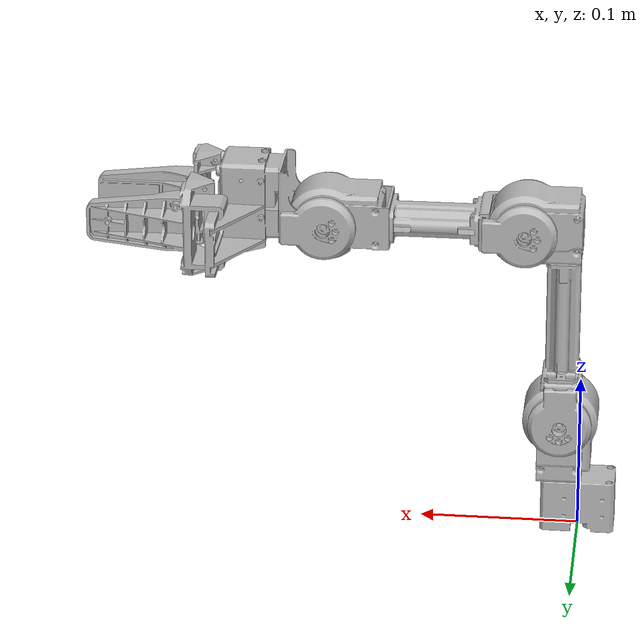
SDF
<?xml version='1.0'?>
<sdf version='1.7'>
  <model name='Openmanipulator'>
    <link name='link1'>
      <pose>0 0 0 0 -0 0</pose>
      <inertial>
        <pose>0.000309 0 -0.000122 0 -0 0</pose>
        <mass>0.07912</mass>
        <inertia>
          <ixx>1.25052e-05</ixx>
          <ixy>0</ixy>
          <ixz>-1.78552e-07</ixz>
          <iyy>2.18984e-05</iyy>
          <iyz>0</iyz>
          <izz>1.92674e-05</izz>
        </inertia>
      </inertial>
      <self_collide>0</self_collide>
      <enable_wind>0</enable_wind>
      <kinematic>0</kinematic>
      <visual name='link1_visual'>
        <pose>0 0 0 0 -0 0</pose>
        <geometry>
          <mesh>
            <scale>0.001 0.001 0.001</scale>
            <uri>/home/roo/catkin_ws/src/open_manipulator/open_manipulator_description/meshes/chain_link1.stl</uri>
          </mesh>
        </geometry>
        <material>
          <shader type='pixel'/>
          <emissive>0 0 0 1</emissive>
        </material>
        <transparency>0</transparency>
        <cast_shadows>1</cast_shadows>
      </visual>
      <collision name='link1_collision'>
        <laser_retro>0</laser_retro>
        <max_contacts>10</max_contacts>
        <pose>0 0 0 0 -0 0</pose>
        <geometry>
          <mesh>
            <uri>/home/roo/catkin_ws/src/open_manipulator/open_manipulator_description/meshes/chain_link1.stl</uri>
            <scale>0.001 0.001 0.001</scale>
          </mesh>
        </geometry>
        <surface>
          <friction>
            <ode>
              <mu>1</mu>
              <mu2>1</mu2>
              <fdir1>0 0 0</fdir1>
              <slip1>0</slip1>
              <slip2>0</slip2>
            </ode>
            <torsional>
              <coefficient>1</coefficient>
              <patch_radius>0</patch_radius>
              <surface_radius>0</surface_radius>
              <use_patch_radius>1</use_patch_radius>
              <ode>
                <slip>0</slip>
              </ode>
            </torsional>
          </friction>
          <bounce>
            <restitution_coefficient>0</restitution_coefficient>
            <threshold>1e+06</threshold>
          </bounce>
          <contact>
            <collide_without_contact>0</collide_without_contact>
            <collide_without_contact_bitmask>1</collide_without_contact_bitmask>
            <collide_bitmask>1</collide_bitmask>
            <ode>
              <soft_cfm>0</soft_cfm>
              <soft_erp>0.2</soft_erp>
              <kp>1e+13</kp>
              <kd>1</kd>
              <max_vel>0.01</max_vel>
              <min_depth>0</min_depth>
            </ode>
            <bullet>
              <split_impulse>1</split_impulse>
              <split_impulse_penetration_threshold>-0.01</split_impulse_penetration_threshold>
              <soft_cfm>0</soft_cfm>
              <soft_erp>0.2</soft_erp>
              <kp>1e+13</kp>
              <kd>1</kd>
            </bullet>
          </contact>
        </surface>
      </collision>
    </link>
    <link name='gripper_link'>
      <pose>0.2417 0.021 0.2045 0 -0 0</pose>
      <inertial>
        <pose>0 0 0 0 -0 0</pose>
        <mass>0.001</mass>
        <inertia>
          <ixx>0.001</ixx>
          <ixy>0</ixy>
          <ixz>0</ixz>
          <iyy>0.001</iyy>
          <iyz>0</iyz>
          <izz>0.001</izz>
        </inertia>
      </inertial>
      <self_collide>0</self_collide>
      <enable_wind>0</enable_wind>
      <kinematic>0</kinematic>
      <visual name='gripper_link_visual'>
        <pose>0 0 0 0 -0 0</pose>
        <geometry>
          <mesh>
            <scale>0.001 0.001 0.001</scale>
            <uri>/home/roo/catkin_ws/src/open_manipulator/open_manipulator_description/meshes/chain_link_grip_l.stl</uri>
          </mesh>
        </geometry>
        <material>
          <shader type='pixel'/>
        </material>
        <transparency>0</transparency>
        <cast_shadows>1</cast_shadows>
      </visual>
      <collision name='gripper_link_collision'>
        <laser_retro>0</laser_retro>
        <max_contacts>10</max_contacts>
        <pose>0 0 0 0 -0 0</pose>
        <geometry>
          <mesh>
            <uri>/home/roo/catkin_ws/src/open_manipulator/open_manipulator_description/meshes/chain_link_grip_l.stl</uri>
            <scale>0.001 0.001 0.001</scale>
          </mesh>
        </geometry>
        <surface>
          <friction>
            <ode>
              <mu>1</mu>
              <mu2>1</mu2>
              <fdir1>0 0 0</fdir1>
              <slip1>0</slip1>
              <slip2>0</slip2>
            </ode>
            <torsional>
              <coefficient>1</coefficient>
              <patch_radius>0</patch_radius>
              <surface_radius>0</surface_radius>
              <use_patch_radius>1</use_patch_radius>
              <ode>
                <slip>0</slip>
              </ode>
            </torsional>
          </friction>
          <bounce>
            <restitution_coefficient>0</restitution_coefficient>
            <threshold>1e+06</threshold>
          </bounce>
          <contact>
            <collide_without_contact>0</collide_without_contact>
            <collide_without_contact_bitmask>1</collide_without_contact_bitmask>
            <collide_bitmask>1</collide_bitmask>
            <ode>
              <soft_cfm>0</soft_cfm>
              <soft_erp>0.2</soft_erp>
              <kp>1e+13</kp>
              <kd>1</kd>
              <max_vel>0.01</max_vel>
              <min_depth>0</min_depth>
            </ode>
            <bullet>
              <split_impulse>1</split_impulse>
              <split_impulse_penetration_threshold>-0.01</split_impulse_penetration_threshold>
              <soft_cfm>0</soft_cfm>
              <soft_erp>0.2</soft_erp>
              <kp>1e+13</kp>
              <kd>1</kd>
            </bullet>
          </contact>
        </surface>
      </collision>
    </link>
    <link name='gripper_link_sub'>
      <pose>0.2417 -0.021 0.2045 0 -0 0</pose>
      <inertial>
        <pose>0 0 0 0 -0 0</pose>
        <mass>0.001</mass>
        <inertia>
          <ixx>0.001</ixx>
          <ixy>0</ixy>
          <ixz>0</ixz>
          <iyy>0.001</iyy>
          <iyz>0</iyz>
          <izz>0.001</izz>
        </inertia>
      </inertial>
      <self_collide>0</self_collide>
      <enable_wind>0</enable_wind>
      <kinematic>0</kinematic>
      <visual name='gripper_link_sub_visual'>
        <pose>0 0 0 0 -0 0</pose>
        <geometry>
          <mesh>
            <scale>0.001 0.001 0.001</scale>
            <uri>/home/roo/catkin_ws/src/open_manipulator/open_manipulator_description/meshes/chain_link_grip_r.stl</uri>
          </mesh>
        </geometry>
        <material>
          <shader type='pixel'/>
        </material>
        <transparency>0</transparency>
        <cast_shadows>1</cast_shadows>
      </visual>
      <collision name='gripper_link_sub_collision'>
        <laser_retro>0</laser_retro>
        <max_contacts>10</max_contacts>
        <pose>0 0 0 0 -0 0</pose>
        <geometry>
          <mesh>
            <uri>/home/roo/catkin_ws/src/open_manipulator/open_manipulator_description/meshes/chain_link_grip_r.stl</uri>
            <scale>0.001 0.001 0.001</scale>
          </mesh>
        </geometry>
        <surface>
          <friction>
            <ode>
              <mu>1</mu>
              <mu2>1</mu2>
              <fdir1>0 0 0</fdir1>
              <slip1>0</slip1>
              <slip2>0</slip2>
            </ode>
            <torsional>
              <coefficient>1</coefficient>
              <patch_radius>0</patch_radius>
              <surface_radius>0</surface_radius>
              <use_patch_radius>1</use_patch_radius>
              <ode>
                <slip>0</slip>
              </ode>
            </torsional>
          </friction>
          <bounce>
            <restitution_coefficient>0</restitution_coefficient>
            <threshold>1e+06</threshold>
          </bounce>
          <contact>
            <collide_without_contact>0</collide_without_contact>
            <collide_without_contact_bitmask>1</collide_without_contact_bitmask>
            <collide_bitmask>1</collide_bitmask>
            <ode>
              <soft_cfm>0</soft_cfm>
              <soft_erp>0.2</soft_erp>
              <kp>1e+13</kp>
              <kd>1</kd>
              <max_vel>0.01</max_vel>
              <min_depth>0</min_depth>
            </ode>
            <bullet>
              <split_impulse>1</split_impulse>
              <split_impulse_penetration_threshold>-0.01</split_impulse_penetration_threshold>
              <soft_cfm>0</soft_cfm>
              <soft_erp>0.2</soft_erp>
              <kp>1e+13</kp>
              <kd>1</kd>
            </bullet>
          </contact>
        </surface>
      </collision>
    </link>
    <link name='link2'>
      <pose>0.012 0 0.017 0 -0 0</pose>
      <inertial>
        <pose>-0.000302 0.00054 0.047433 0 -0 0</pose>
        <mass>0.0984068</mass>
        <inertia>
          <ixx>3.45434e-05</ixx>
          <ixy>-1.60311e-08</ixy>
          <ixz>-3.83752e-07</ixz>
          <iyy>3.26893e-05</iyy>
          <iyz>2.85119e-08</iyz>
          <izz>1.88503e-05</izz>
        </inertia>
      </inertial>
      <self_collide>0</self_collide>
      <enable_wind>0</enable_wind>
      <kinematic>0</kinematic>
      <visual name='link2_visual'>
        <pose>0 0 0.019 0 -0 0</pose>
        <geometry>
          <mesh>
            <scale>0.001 0.001 0.001</scale>
            <uri>/home/roo/catkin_ws/src/open_manipulator/open_manipulator_description/meshes/chain_link2.stl</uri>
          </mesh>
        </geometry>
        <material>
          <shader type='pixel'/>
        </material>
        <transparency>0</transparency>
        <cast_shadows>1</cast_shadows>
      </visual>
      <collision name='link2_collision'>
        <laser_retro>0</laser_retro>
        <max_contacts>10</max_contacts>
        <pose>0 0 0.019 0 -0 0</pose>
        <geometry>
          <mesh>
            <uri>/home/roo/catkin_ws/src/open_manipulator/open_manipulator_description/meshes/chain_link2.stl</uri>
            <scale>0.001 0.001 0.001</scale>
          </mesh>
        </geometry>
        <surface>
          <friction>
            <ode>
              <mu>1</mu>
              <mu2>1</mu2>
              <fdir1>0 0 0</fdir1>
              <slip1>0</slip1>
              <slip2>0</slip2>
            </ode>
            <torsional>
              <coefficient>1</coefficient>
              <patch_radius>0</patch_radius>
              <surface_radius>0</surface_radius>
              <use_patch_radius>1</use_patch_radius>
              <ode>
                <slip>0</slip>
              </ode>
            </torsional>
          </friction>
          <bounce>
            <restitution_coefficient>0</restitution_coefficient>
            <threshold>1e+06</threshold>
          </bounce>
          <contact>
            <collide_without_contact>0</collide_without_contact>
            <collide_without_contact_bitmask>1</collide_without_contact_bitmask>
            <collide_bitmask>1</collide_bitmask>
            <ode>
              <soft_cfm>0</soft_cfm>
              <soft_erp>0.2</soft_erp>
              <kp>1e+13</kp>
              <kd>1</kd>
              <max_vel>0.01</max_vel>
              <min_depth>0</min_depth>
            </ode>
            <bullet>
              <split_impulse>1</split_impulse>
              <split_impulse_penetration_threshold>-0.01</split_impulse_penetration_threshold>
              <soft_cfm>0</soft_cfm>
              <soft_erp>0.2</soft_erp>
              <kp>1e+13</kp>
              <kd>1</kd>
            </bullet>
          </contact>
        </surface>
      </collision>
    </link>
    <link name='link3'>
      <pose>0.012 0 0.0765 0 -0 0</pose>
      <inertial>
        <pose>0.010308 0.000377 0.101702 0 -0 0</pose>
        <mass>0.138509</mass>
        <inertia>
          <ixx>0.000330554</ixx>
          <ixy>-9.7941e-08</ixy>
          <ixz>-3.85057e-05</ixz>
          <iyy>0.000342904</iyy>
          <iyz>-1.57175e-06</iyz>
          <izz>6.03465e-05</izz>
        </inertia>
      </inertial>
      <self_collide>0</self_collide>
      <enable_wind>0</enable_wind>
      <kinematic>0</kinematic>
      <visual name='link3_visual'>
        <pose>0 0 0 0 -0 0</pose>
        <geometry>
          <mesh>
            <scale>0.001 0.001 0.001</scale>
            <uri>/home/roo/catkin_ws/src/open_manipulator/open_manipulator_description/meshes/chain_link3.stl</uri>
          </mesh>
        </geometry>
        <material>
          <shader type='pixel'/>
        </material>
        <transparency>0</transparency>
        <cast_shadows>1</cast_shadows>
      </visual>
      <collision name='link3_collision'>
        <laser_retro>0</laser_retro>
        <max_contacts>10</max_contacts>
        <pose>0 0 0 0 -0 0</pose>
        <geometry>
          <mesh>
            <uri>/home/roo/catkin_ws/src/open_manipulator/open_manipulator_description/meshes/chain_link3.stl</uri>
            <scale>0.001 0.001 0.001</scale>
          </mesh>
        </geometry>
        <surface>
          <friction>
            <ode>
              <mu>1</mu>
              <mu2>1</mu2>
              <fdir1>0 0 0</fdir1>
              <slip1>0</slip1>
              <slip2>0</slip2>
            </ode>
            <torsional>
              <coefficient>1</coefficient>
              <patch_radius>0</patch_radius>
              <surface_radius>0</surface_radius>
              <use_patch_radius>1</use_patch_radius>
              <ode>
                <slip>0</slip>
              </ode>
            </torsional>
          </friction>
          <bounce>
            <restitution_coefficient>0</restitution_coefficient>
            <threshold>1e+06</threshold>
          </bounce>
          <contact>
            <collide_without_contact>0</collide_without_contact>
            <collide_without_contact_bitmask>1</collide_without_contact_bitmask>
            <collide_bitmask>1</collide_bitmask>
            <ode>
              <soft_cfm>0</soft_cfm>
              <soft_erp>0.2</soft_erp>
              <kp>1e+13</kp>
              <kd>1</kd>
              <max_vel>0.01</max_vel>
              <min_depth>0</min_depth>
            </ode>
            <bullet>
              <split_impulse>1</split_impulse>
              <split_impulse_penetration_threshold>-0.01</split_impulse_penetration_threshold>
              <soft_cfm>0</soft_cfm>
              <soft_erp>0.2</soft_erp>
              <kp>1e+13</kp>
              <kd>1</kd>
            </bullet>
          </contact>
        </surface>
      </collision>
    </link>
    <link name='link4'>
      <pose>0.036 0 0.2045 0 -0 0</pose>
      <inertial>
        <pose>0.09091 0.000389 0.000224 0 -0 0</pose>
        <mass>0.132746</mass>
        <inertia>
          <ixx>3.06542e-05</ixx>
          <ixy>-1.27642e-06</ixy>
          <ixz>-2.68744e-07</ixz>
          <iyy>0.000242303</iyy>
          <iyz>1.15595e-08</iyz>
          <izz>0.000251551</izz>
        </inertia>
      </inertial>
      <self_collide>0</self_collide>
      <enable_wind>0</enable_wind>
      <kinematic>0</kinematic>
      <visual name='link4_visual'>
        <pose>0 0 0 0 -0 0</pose>
        <geometry>
          <mesh>
            <scale>0.001 0.001 0.001</scale>
            <uri>/home/roo/catkin_ws/src/open_manipulator/open_manipulator_description/meshes/chain_link4.stl</uri>
          </mesh>
        </geometry>
        <material>
          <shader type='pixel'/>
        </material>
        <transparency>0</transparency>
        <cast_shadows>1</cast_shadows>
      </visual>
      <collision name='link4_collision'>
        <laser_retro>0</laser_retro>
        <max_contacts>10</max_contacts>
        <pose>0 0 0 0 -0 0</pose>
        <geometry>
          <mesh>
            <uri>/home/roo/catkin_ws/src/open_manipulator/open_manipulator_description/meshes/chain_link4.stl</uri>
            <scale>0.001 0.001 0.001</scale>
          </mesh>
        </geometry>
        <surface>
          <friction>
            <ode>
              <mu>1</mu>
              <mu2>1</mu2>
              <fdir1>0 0 0</fdir1>
              <slip1>0</slip1>
              <slip2>0</slip2>
            </ode>
            <torsional>
              <coefficient>1</coefficient>
              <patch_radius>0</patch_radius>
              <surface_radius>0</surface_radius>
              <use_patch_radius>1</use_patch_radius>
              <ode>
                <slip>0</slip>
              </ode>
            </torsional>
          </friction>
          <bounce>
            <restitution_coefficient>0</restitution_coefficient>
            <threshold>1e+06</threshold>
          </bounce>
          <contact>
            <collide_without_contact>0</collide_without_contact>
            <collide_without_contact_bitmask>1</collide_without_contact_bitmask>
            <collide_bitmask>1</collide_bitmask>
            <ode>
              <soft_cfm>0</soft_cfm>
              <soft_erp>0.2</soft_erp>
              <kp>1e+13</kp>
              <kd>1</kd>
              <max_vel>0.01</max_vel>
              <min_depth>0</min_depth>
            </ode>
            <bullet>
              <split_impulse>1</split_impulse>
              <split_impulse_penetration_threshold>-0.01</split_impulse_penetration_threshold>
              <soft_cfm>0</soft_cfm>
              <soft_erp>0.2</soft_erp>
              <kp>1e+13</kp>
              <kd>1</kd>
            </bullet>
          </contact>
        </surface>
      </collision>
    </link>
    <link name='link5'>
      <pose>0.16 0 0.2045 0 -0 0</pose>
      <inertial>
        <pose>0.044774 0 0.008852 0 -0 0</pose>
        <mass>0.144276</mass>
        <inertia>
          <ixx>0.00108095</ixx>
          <ixy>2.99238e-11</ixy>
          <ixz>-2.9172e-07</ixz>
          <iyy>0.0010827</iyy>
          <iyz>-3.26124e-12</iyz>
          <izz>0.00109977</izz>
        </inertia>
      </inertial>
      <self_collide>0</self_collide>
      <enable_wind>0</enable_wind>
      <kinematic>0</kinematic>
      <visual name='link5_visual'>
        <pose>0 0 0 0 -0 0</pose>
        <geometry>
          <mesh>
            <scale>0.001 0.001 0.001</scale>
            <uri>/home/roo/catkin_ws/src/open_manipulator/open_manipulator_description/meshes/chain_link5.stl</uri>
          </mesh>
        </geometry>
        <material>
          <shader type='pixel'/>
        </material>
        <transparency>0</transparency>
        <cast_shadows>1</cast_shadows>
      </visual>
      <visual name='link5_fixed_joint_lump__end_effector_link_visual_1'>
        <pose>0.126 0 0 0 -0 0</pose>
        <geometry>
          <box>
            <size>0.01 0.01 0.01</size>
          </box>
        </geometry>
        <material>
          <script>
            <name>Gazebo/Red</name>
            <uri>file://media/materials/scripts/gazebo.material</uri>
          </script>
          <shader type='pixel'/>
        </material>
        <transparency>0</transparency>
        <cast_shadows>1</cast_shadows>
      </visual>
      <collision name='link5_collision'>
        <laser_retro>0</laser_retro>
        <max_contacts>10</max_contacts>
        <pose>0 0 0 0 -0 0</pose>
        <geometry>
          <mesh>
            <uri>/home/roo/catkin_ws/src/open_manipulator/open_manipulator_description/meshes/chain_link5.stl</uri>
            <scale>0.001 0.001 0.001</scale>
          </mesh>
        </geometry>
        <surface>
          <friction>
            <ode>
              <mu>1</mu>
              <mu2>1</mu2>
              <fdir1>0 0 0</fdir1>
              <slip1>0</slip1>
              <slip2>0</slip2>
            </ode>
            <torsional>
              <coefficient>1</coefficient>
              <patch_radius>0</patch_radius>
              <surface_radius>0</surface_radius>
              <use_patch_radius>1</use_patch_radius>
              <ode>
                <slip>0</slip>
              </ode>
            </torsional>
          </friction>
          <bounce>
            <restitution_coefficient>0</restitution_coefficient>
            <threshold>1e+06</threshold>
          </bounce>
          <contact>
            <collide_without_contact>0</collide_without_contact>
            <collide_without_contact_bitmask>1</collide_without_contact_bitmask>
            <collide_bitmask>1</collide_bitmask>
            <ode>
              <soft_cfm>0</soft_cfm>
              <soft_erp>0.2</soft_erp>
              <kp>1e+13</kp>
              <kd>1</kd>
              <max_vel>0.01</max_vel>
              <min_depth>0</min_depth>
            </ode>
            <bullet>
              <split_impulse>1</split_impulse>
              <split_impulse_penetration_threshold>-0.01</split_impulse_penetration_threshold>
              <soft_cfm>0</soft_cfm>
              <soft_erp>0.2</soft_erp>
              <kp>1e+13</kp>
              <kd>1</kd>
            </bullet>
          </contact>
        </surface>
      </collision>
    </link>

    <joint name='gripper' type='prismatic'>
      <parent>link5</parent>
      <child>gripper_link</child>
      <pose>0 0 0 0 -0 0</pose>
      <axis>
        <xyz>0 1 0</xyz>
        <limit>
          <lower>-0.01</lower>
          <upper>0.019</upper>
          <effort>1</effort>
          <velocity>4.8</velocity>
        </limit>
        <dynamics>
          <spring_reference>0</spring_reference>
          <spring_stiffness>0</spring_stiffness>
          <damping>0</damping>
          <friction>0</friction>
        </dynamics>
      </axis>
      <physics>
        <ode>
          <limit>
            <cfm>0</cfm>
            <erp>0.2</erp>
          </limit>
          <suspension>
            <cfm>0</cfm>
            <erp>0.2</erp>
          </suspension>
        </ode>
      </physics>
    </joint>
    <joint name='gripper_sub' type='prismatic'>
      <parent>link5</parent>
      <child>gripper_link_sub</child>
      <pose>0 0 0 0 -0 0</pose>
      <axis>
        <xyz>0 -1 0</xyz>
        <limit>
          <lower>-0.01</lower>
          <upper>0.019</upper>
          <effort>1</effort>
          <velocity>4.8</velocity>
        </limit>
        <dynamics>
          <spring_reference>0</spring_reference>
          <spring_stiffness>0</spring_stiffness>
          <damping>0</damping>
          <friction>0</friction>
        </dynamics>
      </axis>
      <physics>
        <ode>
          <limit>
            <cfm>0</cfm>
            <erp>0.2</erp>
          </limit>
          <suspension>
            <cfm>0</cfm>
            <erp>0.2</erp>
          </suspension>
        </ode>
      </physics>
    </joint>
    <joint name='joint1' type='revolute'>
      <parent>link1</parent>
      <child>link2</child>
      <pose>0 0 0 0 -0 0</pose>
      <axis>
        <xyz>0 0 1</xyz>
        <limit>
          <lower>-2.82743</lower>
          <upper>2.82743</upper>
          <effort>1</effort>
          <velocity>4.8</velocity>
        </limit>
        <dynamics>
          <spring_reference>0</spring_reference>
          <spring_stiffness>0</spring_stiffness>
          <damping>0</damping>
          <friction>0</friction>
        </dynamics>
      </axis>
      <physics>
        <ode>
          <limit>
            <cfm>0</cfm>
            <erp>0.2</erp>
          </limit>
          <suspension>
            <cfm>0</cfm>
            <erp>0.2</erp>
          </suspension>
        </ode>
      </physics>
    </joint>
    <joint name='joint2' type='revolute'>
      <parent>link2</parent>
      <child>link3</child>
      <pose>0 0 0 0 -0 0</pose>
      <axis>
        <xyz>0 1 0</xyz>
        <limit>
          <lower>-1.79071</lower>
          <upper>1.5708</upper>
          <effort>1</effort>
          <velocity>4.8</velocity>
        </limit>
        <dynamics>
          <spring_reference>0</spring_reference>
          <spring_stiffness>0</spring_stiffness>
          <damping>0</damping>
          <friction>0</friction>
        </dynamics>
      </axis>
      <physics>
        <ode>
          <limit>
            <cfm>0</cfm>
            <erp>0.2</erp>
          </limit>
          <suspension>
            <cfm>0</cfm>
            <erp>0.2</erp>
          </suspension>
        </ode>
      </physics>
    </joint>
    <joint name='joint3' type='revolute'>
      <parent>link3</parent>
      <child>link4</child>
      <pose>-0 0 0 0 -0 0</pose>
      <axis>
        <xyz>0 1 0</xyz>
        <limit>
          <lower>-0.942478</lower>
          <upper>1.3823</upper>
          <effort>1</effort>
          <velocity>4.8</velocity>
        </limit>
        <dynamics>
          <spring_reference>0</spring_reference>
          <spring_stiffness>0</spring_stiffness>
          <damping>0</damping>
          <friction>0</friction>
        </dynamics>
      </axis>
      <physics>
        <ode>
          <limit>
            <cfm>0</cfm>
            <erp>0.2</erp>
          </limit>
          <suspension>
            <cfm>0</cfm>
            <erp>0.2</erp>
          </suspension>
        </ode>
      </physics>
    </joint>
    <joint name='joint4' type='revolute'>
      <parent>link4</parent>
      <child>link5</child>
      <pose>0 0 0 0 -0 0</pose>
      <axis>
        <xyz>0 1 0</xyz>
        <limit>
          <lower>-1.79071</lower>
          <upper>2.04204</upper>
          <effort>1</effort>
          <velocity>4.8</velocity>
        </limit>
        <dynamics>
          <spring_reference>0</spring_reference>
          <spring_stiffness>0</spring_stiffness>
          <damping>0</damping>
          <friction>0</friction>
        </dynamics>
      </axis>
      <physics>
        <ode>
          <limit>
            <cfm>0</cfm>
            <erp>0.2</erp>
          </limit>
          <suspension>
            <cfm>0</cfm>
            <erp>0.2</erp>
          </suspension>
        </ode>
      </physics>
    </joint>
    <static>0</static>
    <allow_auto_disable>1</allow_auto_disable>
    <plugin name='gazebo_gripper_ros_control' filename='libroboticsgroup_gazebo_mimic_joint_plugin.so'>
      <joint>gripper</joint>
      <mimicJoint>gripper_sub</mimicJoint>
      <multiplier>1.0</multiplier>
      <offset>0.0</offset>
      <robotNamespace>/</robotNamespace>
    </plugin>
    <plugin name='gazebo_ros_control' filename='libgazebo_ros_control.so'>
      <controlPeriod>0.001</controlPeriod>
      <robotSimType>gazebo_ros_control/DefaultRobotHWSim</robotSimType>
      <legacyModeNS>1</legacyModeNS>
      <robotNamespace>/</robotNamespace>
    </plugin>
  </model>
</sdf>
